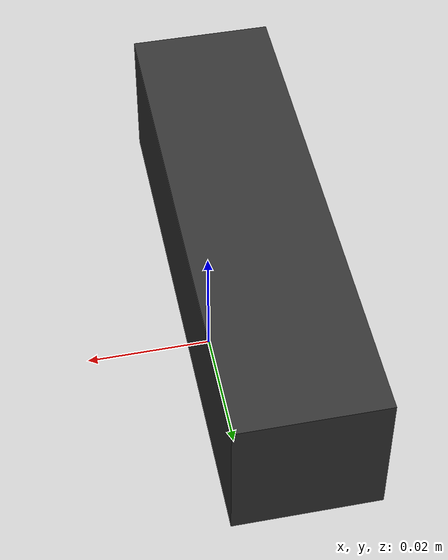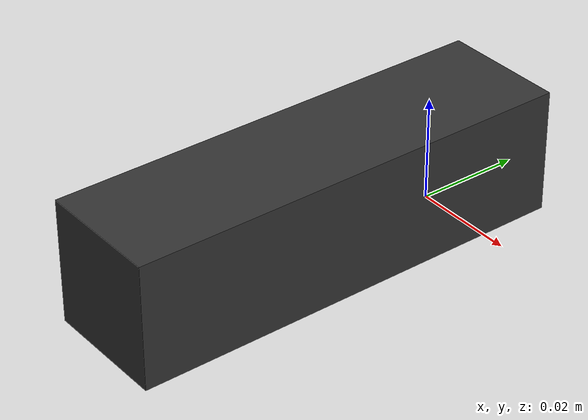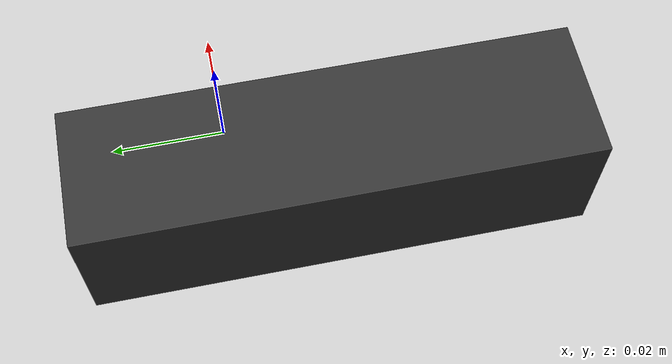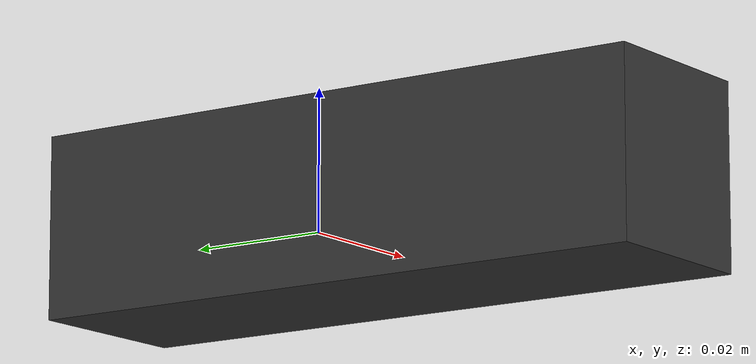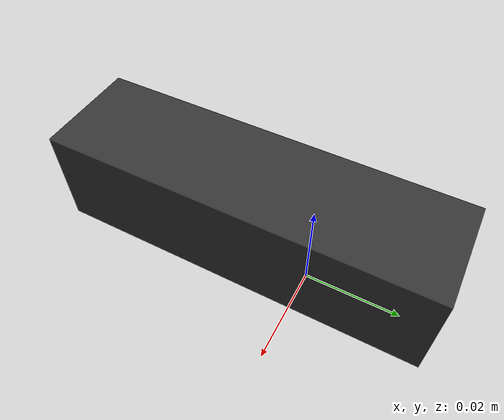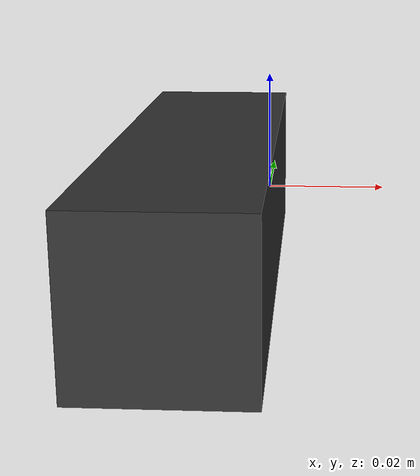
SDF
<?xml version="1.0"?>
<sdf version="1.9">
  <model name="realsense_d435i">
    <frame name="d435i_depth_frame" attached_to="camera_link">
      <pose relative_to="camera_link">0 0 0 0 0 0</pose>
    </frame>
    <frame name="d435i_depth_optical_frame" attached_to="d435i_depth_frame">
      <pose relative_to="d435i_depth_frame">0 0 0 -1.5707963 0 -1.5707963</pose>
    </frame>

    <frame name="d435i_color_frame" attached_to="camera_link">
      <pose relative_to="camera_link">0 0.015 0 0 0 0</pose>
    </frame>
    <frame name="d435i_color_optical_frame" attached_to="d435i_color_frame">
      <pose relative_to="d435i_color_frame">0 0 0 -1.5707963 0 -1.5707963</pose>
    </frame>

    <frame name="d435i_infra1_frame" attached_to="camera_link">
      <pose relative_to="camera_link">0 0 0 0 0 0</pose>
    </frame>
    <frame name="d435i_infra1_optical_frame" attached_to="d435i_infra1_frame">
      <pose relative_to="d435i_infra1_frame">0 0 0 -1.5707963 0 -1.5707963</pose>
    </frame>
    <frame name="d435i_infra2_frame" attached_to="camera_link">
      <pose relative_to="camera_link">0 -0.050 0 0 0 0</pose>
    </frame>
    <frame name="d435i_infra2_optical_frame" attached_to="d435i_infra2_frame">
      <pose relative_to="d435i_infra2_frame">0 0 0 -1.5707963 0 -1.5707963</pose>
    </frame>

    <frame name="d435i_imu_frame" attached_to="camera_link">
      <pose relative_to="camera_link">-0.01174 -0.00552 0.0051 0 0 0</pose>
    </frame>
    <frame name="d435i_imu_optical_frame" attached_to="d435i_imu_frame">
      <pose relative_to="d435i_imu_frame">0 0 0 -1.5707963 0 -1.5707963</pose>
    </frame>

    <link name="camera_link">
      <inertial>
        <!-- Module is 25.05 x 90 x 25 mm, 72 g. Centre of the box sits back and
             right of the left IR imager, hence the offset pose. -->
        <pose>-0.0106 -0.0175 0 0 0 0</pose>
        <mass>0.072</mass>
        <inertia>
          <ixx>5.235e-05</ixx>
          <ixy>0</ixy>
          <ixz>0</ixz>
          <iyy>7.513e-06</iyy>
          <iyz>0</iyz>
          <izz>5.236e-05</izz>
        </inertia>
      </inertial>

      <visual name="body_visual">
        <pose>-0.0106 -0.0175 0 0 0 0</pose>
        <geometry>
          <box>
            <size>0.02505 0.090 0.025</size>
          </box>
        </geometry>
        <material>
          <ambient>0.15 0.15 0.15 1</ambient>
          <diffuse>0.2 0.2 0.2 1</diffuse>
          <specular>0.4 0.4 0.4 1</specular>
        </material>
      </visual>

      <collision name="body_collision">
        <pose>-0.0106 -0.0175 0 0 0 0</pose>
        <geometry>
          <box>
            <size>0.02505 0.090 0.025</size>
          </box>
        </geometry>
      </collision>

      <sensor name="depth" type="depth_camera">
        <gz_frame_id>d435i_depth_optical_frame</gz_frame_id>
        <pose>0 0 0 0 0 0</pose>
        <topic>/d435i/depth/image_rect_raw</topic>
        <always_on>1</always_on>
        <update_rate>30</update_rate>
        <camera>
          <horizontal_fov>1.518436</horizontal_fov>
          <image>
            <width>848</width>
            <height>480</height>
            <format>R_FLOAT32</format>
          </image>
          <clip>
            <!-- near = min-Z at 848x480 (~0.195 m); far = datasheet max range. -->
            <near>0.2</near>
            <far>10.0</far>
          </clip>
          <noise>
            <type>gaussian</type>
            <mean>0</mean>
            <stddev>0.014</stddev>
          </noise>
        </camera>
      </sensor>

      <sensor name="infra1" type="camera">
        <gz_frame_id>d435i_infra1_optical_frame</gz_frame_id>
        <pose>0 0 0 0 0 0</pose>
        <topic>/d435i/infra1/image_rect_raw</topic>
        <always_on>1</always_on>
        <update_rate>5</update_rate>
        <camera>
          <horizontal_fov>1.518436</horizontal_fov>
          <image>
            <width>848</width>
            <height>480</height>
            <format>L8</format>
          </image>
          <clip>
            <near>0.1</near>
            <far>1000.0</far>
          </clip>
          <noise>
            <type>gaussian</type>
            <mean>0</mean>
            <stddev>0.007</stddev>
          </noise>
        </camera>
      </sensor>

      <sensor name="infra2" type="camera">
        <gz_frame_id>d435i_infra2_optical_frame</gz_frame_id>
        <pose>0 -0.050 0 0 0 0</pose>
        <topic>/d435i/infra2/image_rect_raw</topic>
        <always_on>1</always_on>
        <update_rate>5</update_rate>
        <camera>
          <horizontal_fov>1.518436</horizontal_fov>
          <image>
            <width>848</width>
            <height>480</height>
            <format>L8</format>
          </image>
          <clip>
            <near>0.1</near>
            <far>1000.0</far>
          </clip>
          <noise>
            <type>gaussian</type>
            <mean>0</mean>
            <stddev>0.007</stddev>
          </noise>
        </camera>
      </sensor>

      <!--
        COLOR. 69 x 42 deg per datasheet; at 848x480 the derived vfov is 42.5 deg.
        Offset +15 mm in Y from depth - see the header comment.
      -->
      <sensor name="color" type="camera">
        <gz_frame_id>d435i_color_optical_frame</gz_frame_id>
        <pose>0 0.015 0 0 0 0</pose>
        <topic>/d435i/color/image_raw</topic>
        <always_on>1</always_on>
        <update_rate>30</update_rate>
        <camera>
          <horizontal_fov>1.204277</horizontal_fov>
          <image>
            <width>848</width>
            <height>480</height>
            <format>R8G8B8</format>
          </image>
          <clip>
            <near>0.1</near>
            <far>1000.0</far>
          </clip>
          <noise>
            <type>gaussian</type>
            <mean>0</mean>
            <stddev>0.007</stddev>
          </noise>
        </camera>

        <plugin name="GstCameraPlugin" filename="GstCameraPlugin">
          <udp_host>127.0.0.1</udp_host>
          <udp_port>5600</udp_port>
          <use_basic_pipeline>true</use_basic_pipeline>
          <use_cuda>false</use_cuda>
        </plugin>
      </sensor>

      <sensor name="imu" type="imu">
        <gz_frame_id>d435i_imu_optical_frame</gz_frame_id>
        <pose>-0.01174 -0.00552 0.0051 -1.5707963 0 -1.5707963</pose>
        <topic>/d435i/imu</topic>
        <always_on>1</always_on>
        <update_rate>200</update_rate>
        <imu>
          <angular_velocity>
            <x><noise type="gaussian"><mean>0</mean><stddev>2.44e-3</stddev><bias_mean>0</bias_mean><bias_stddev>1.745e-2</bias_stddev></noise></x>
            <y><noise type="gaussian"><mean>0</mean><stddev>2.44e-3</stddev><bias_mean>0</bias_mean><bias_stddev>1.745e-2</bias_stddev></noise></y>
            <z><noise type="gaussian"><mean>0</mean><stddev>2.44e-3</stddev><bias_mean>0</bias_mean><bias_stddev>1.745e-2</bias_stddev></noise></z>
          </angular_velocity>
          <linear_acceleration>
            <x><noise type="gaussian"><mean>0</mean><stddev>1.47e-2</stddev><bias_mean>0</bias_mean><bias_stddev>6.865e-1</bias_stddev></noise></x>
            <y><noise type="gaussian"><mean>0</mean><stddev>1.47e-2</stddev><bias_mean>0</bias_mean><bias_stddev>6.865e-1</bias_stddev></noise></y>
            <z><noise type="gaussian"><mean>0</mean><stddev>1.47e-2</stddev><bias_mean>0</bias_mean><bias_stddev>6.865e-1</bias_stddev></noise></z>
          </linear_acceleration>
        </imu>
      </sensor>
    </link>
  </model>
</sdf>
